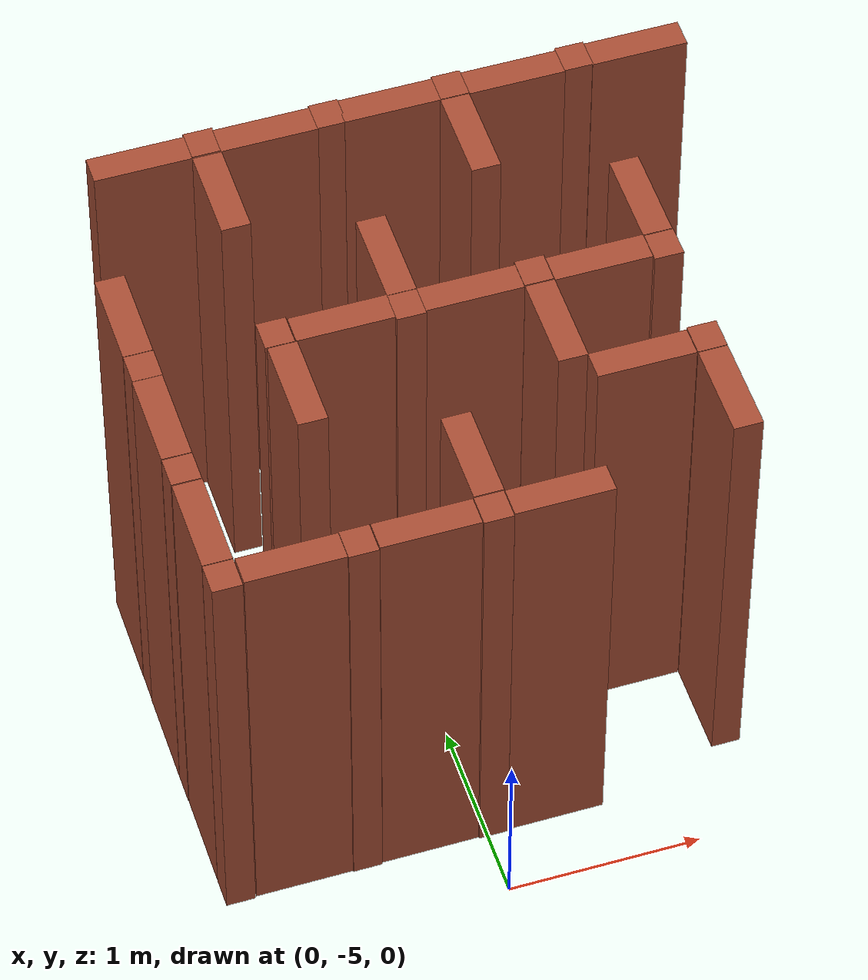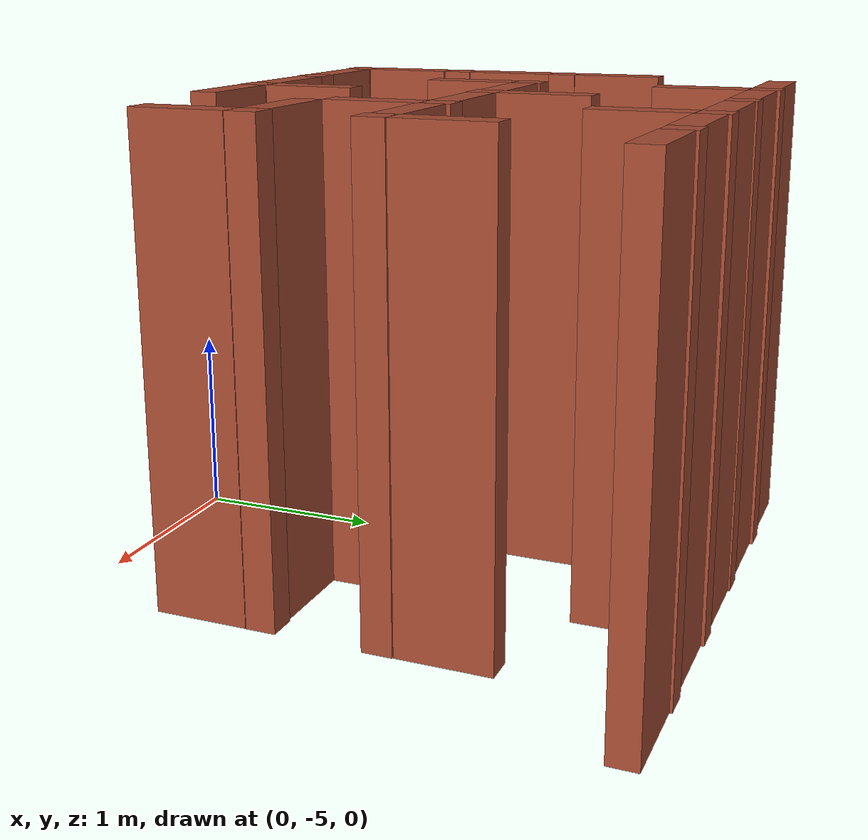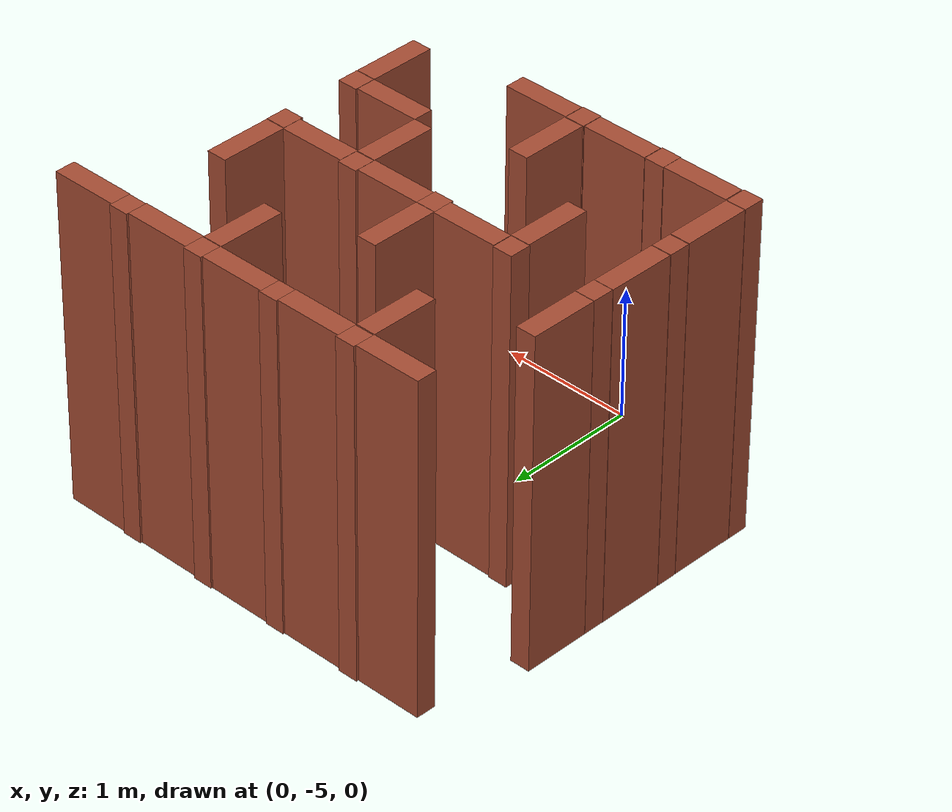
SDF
<?xml version='1.0'?>
<sdf version='1.7'>
  <model name='Maze_01'>
    <pose>0.265067 -2.33264 0 0 -0 0</pose>
    <link name='Wall_10'>
      <collision name='Wall_10_Collision'>
        <geometry>
          <box>
            <size>0.5 0.15 2.5</size>
          </box>
        </geometry>
        <pose>0 0 1.25 0 -0 0</pose>
      </collision>
      <visual name='Wall_10_Visual'>
        <pose>0 0 1.25 0 -0 0</pose>
        <geometry>
          <box>
            <size>0.5 0.15 2.5</size>
          </box>
        </geometry>
        <material>
          <script>
            <uri>file://media/materials/scripts/gazebo.material</uri>
            <name>Gazebo/Bricks</name>
          </script>
          <ambient>1 1 1 1</ambient>
        </material>
        <meta>
          <layer>0</layer>
        </meta>
      </visual>
      <pose>-0.553014 0.372592 0 0 -0 0</pose>
    </link>
    <link name='Wall_100'>
      <collision name='Wall_100_Collision'>
        <geometry>
          <box>
            <size>0.16 0.15 2.5</size>
          </box>
        </geometry>
        <pose>0 0 1.25 0 -0 0</pose>
      </collision>
      <visual name='Wall_100_Visual'>
        <pose>0 0 1.25 0 -0 0</pose>
        <geometry>
          <box>
            <size>0.16 0.15 2.5</size>
          </box>
        </geometry>
        <material>
          <script>
            <uri>file://media/materials/scripts/gazebo.material</uri>
            <name>Gazebo/Bricks</name>
          </script>
          <ambient>1 1 1 1</ambient>
        </material>
        <meta>
          <layer>0</layer>
        </meta>
      </visual>
      <pose>1.06501 -0.940946 0 0 -0 1.5708</pose>
    </link>
    <link name='Wall_102'>
      <collision name='Wall_102_Collision'>
        <geometry>
          <box>
            <size>0.16 0.15 2.5</size>
          </box>
        </geometry>
        <pose>0 0 1.25 0 -0 0</pose>
      </collision>
      <visual name='Wall_102_Visual'>
        <pose>0 0 1.25 0 -0 0</pose>
        <geometry>
          <box>
            <size>0.16 0.15 2.5</size>
          </box>
        </geometry>
        <material>
          <script>
            <uri>file://media/materials/scripts/gazebo.material</uri>
            <name>Gazebo/Bricks</name>
          </script>
          <ambient>1 1 1 1</ambient>
        </material>
        <meta>
          <layer>0</layer>
        </meta>
      </visual>
      <pose>-1.55017 -2.25264 0 0 -0 1.5708</pose>
    </link>
    <link name='Wall_104'>
      <collision name='Wall_104_Collision'>
        <geometry>
          <box>
            <size>0.16 0.15 2.5</size>
          </box>
        </geometry>
        <pose>0 0 1.25 0 -0 0</pose>
      </collision>
      <visual name='Wall_104_Visual'>
        <pose>0 0 1.25 0 -0 0</pose>
        <geometry>
          <box>
            <size>0.16 0.15 2.5</size>
          </box>
        </geometry>
        <material>
          <script>
            <uri>file://media/materials/scripts/gazebo.material</uri>
            <name>Gazebo/Bricks</name>
          </script>
          <ambient>1 1 1 1</ambient>
        </material>
        <meta>
          <layer>0</layer>
        </meta>
      </visual>
      <pose>-0.230921 0.380771 0 0 -0 1.5708</pose>
    </link>
    <link name='Wall_16'>
      <collision name='Wall_16_Collision'>
        <geometry>
          <box>
            <size>0.5 0.15 2.5</size>
          </box>
        </geometry>
        <pose>0 0 1.25 0 -0 0</pose>
      </collision>
      <visual name='Wall_16_Visual'>
        <pose>0 0 1.25 0 -0 0</pose>
        <geometry>
          <box>
            <size>0.5 0.15 2.5</size>
          </box>
        </geometry>
        <material>
          <script>
            <uri>file://media/materials/scripts/gazebo.material</uri>
            <name>Gazebo/Bricks</name>
          </script>
          <ambient>1 1 1 1</ambient>
        </material>
        <meta>
          <layer>0</layer>
        </meta>
      </visual>
      <pose>0.084482 0.375615 0 0 -0 0</pose>
    </link>
    <link name='Wall_18'>
      <collision name='Wall_18_Collision'>
        <geometry>
          <box>
            <size>0.5 0.15 2.5</size>
          </box>
        </geometry>
        <pose>0 0 1.25 0 -0 0</pose>
      </collision>
      <visual name='Wall_18_Visual'>
        <pose>0 0 1.25 0 -0 0</pose>
        <geometry>
          <box>
            <size>0.5 0.15 2.5</size>
          </box>
        </geometry>
        <material>
          <script>
            <uri>file://media/materials/scripts/gazebo.material</uri>
            <name>Gazebo/Bricks</name>
          </script>
          <ambient>1 1 1 1</ambient>
        </material>
        <meta>
          <layer>0</layer>
        </meta>
      </visual>
      <pose>-0.875597 0.045707 0 0 -0 1.5708</pose>
    </link>
    <link name='Wall_20'>
      <collision name='Wall_20_Collision'>
        <geometry>
          <box>
            <size>0.5 0.15 2.5</size>
          </box>
        </geometry>
        <pose>0 0 1.25 0 -0 0</pose>
      </collision>
      <visual name='Wall_20_Visual'>
        <pose>0 0 1.25 0 -0 0</pose>
        <geometry>
          <box>
            <size>0.5 0.15 2.5</size>
          </box>
        </geometry>
        <material>
          <script>
            <uri>file://media/materials/scripts/gazebo.material</uri>
            <name>Gazebo/Bricks</name>
          </script>
          <ambient>1 1 1 1</ambient>
        </material>
        <meta>
          <layer>0</layer>
        </meta>
      </visual>
      <pose>1.37698 0.37283 0 0 -0 0</pose>
    </link>
    <link name='Wall_22'>
      <collision name='Wall_22_Collision'>
        <geometry>
          <box>
            <size>0.5 0.15 2.5</size>
          </box>
        </geometry>
        <pose>0 0 1.25 0 -0 0</pose>
      </collision>
      <visual name='Wall_22_Visual'>
        <pose>0 0 1.25 0 -0 0</pose>
        <geometry>
          <box>
            <size>0.5 0.15 2.5</size>
          </box>
        </geometry>
        <material>
          <script>
            <uri>file://media/materials/scripts/gazebo.material</uri>
            <name>Gazebo/Bricks</name>
          </script>
          <ambient>1 1 1 1</ambient>
        </material>
        <meta>
          <layer>0</layer>
        </meta>
      </visual>
      <pose>0.404778 0.048955 0 0 -0 -1.5708</pose>
    </link>
    <link name='Wall_24'>
      <collision name='Wall_24_Collision'>
        <geometry>
          <box>
            <size>0.5 0.15 2.5</size>
          </box>
        </geometry>
        <pose>0 0 1.25 0 -0 0</pose>
      </collision>
      <visual name='Wall_24_Visual'>
        <pose>0 0 1.25 0 -0 0</pose>
        <geometry>
          <box>
            <size>0.5 0.15 2.5</size>
          </box>
        </geometry>
        <material>
          <script>
            <uri>file://media/materials/scripts/gazebo.material</uri>
            <name>Gazebo/Bricks</name>
          </script>
          <ambient>1 1 1 1</ambient>
        </material>
        <meta>
          <layer>0</layer>
        </meta>
      </visual>
      <pose>-1.55088 -0.586783 0 0 -0 -1.5708</pose>
    </link>
    <link name='Wall_26'>
      <collision name='Wall_26_Collision'>
        <geometry>
          <box>
            <size>0.5 0.15 2.5</size>
          </box>
        </geometry>
        <pose>0 0 1.25 0 -0 0</pose>
      </collision>
      <visual name='Wall_26_Visual'>
        <pose>0 0 1.25 0 -0 0</pose>
        <geometry>
          <box>
            <size>0.5 0.15 2.5</size>
          </box>
        </geometry>
        <material>
          <script>
            <uri>file://media/materials/scripts/gazebo.material</uri>
            <name>Gazebo/Bricks</name>
          </script>
          <ambient>1 1 1 1</ambient>
        </material>
        <meta>
          <layer>0</layer>
        </meta>
      </visual>
      <pose>-1.54996 -1.91949 0 0 -0 -1.5708</pose>
    </link>
    <link name='Wall_28'>
      <collision name='Wall_28_Collision'>
        <geometry>
          <box>
            <size>0.5 0.15 2.5</size>
          </box>
        </geometry>
        <pose>0 0 1.25 0 -0 0</pose>
      </collision>
      <visual name='Wall_28_Visual'>
        <pose>0 0 1.25 0 -0 0</pose>
        <geometry>
          <box>
            <size>0.5 0.15 2.5</size>
          </box>
        </geometry>
        <material>
          <script>
            <uri>file://media/materials/scripts/gazebo.material</uri>
            <name>Gazebo/Bricks</name>
          </script>
          <ambient>1 1 1 1</ambient>
        </material>
        <meta>
          <layer>0</layer>
        </meta>
      </visual>
      <pose>-1.55198 -1.25038 0 0 -0 -1.5708</pose>
    </link>
    <link name='Wall_30'>
      <collision name='Wall_30_Collision'>
        <geometry>
          <box>
            <size>0.5 0.15 2.5</size>
          </box>
        </geometry>
        <pose>0 0 1.25 0 -0 0</pose>
      </collision>
      <visual name='Wall_30_Visual'>
        <pose>0 0 1.25 0 -0 0</pose>
        <geometry>
          <box>
            <size>0.5 0.15 2.5</size>
          </box>
        </geometry>
        <material>
          <script>
            <uri>file://media/materials/scripts/gazebo.material</uri>
            <name>Gazebo/Bricks</name>
          </script>
          <ambient>1 1 1 1</ambient>
        </material>
        <meta>
          <layer>0</layer>
        </meta>
      </visual>
      <pose>0.732216 0.371356 0 0 -0 0</pose>
    </link>
    <link name='Wall_32'>
      <collision name='Wall_32_Collision'>
        <geometry>
          <box>
            <size>0.5 0.15 2.5</size>
          </box>
        </geometry>
        <pose>0 0 1.25 0 -0 0</pose>
      </collision>
      <visual name='Wall_32_Visual'>
        <pose>0 0 1.25 0 -0 0</pose>
        <geometry>
          <box>
            <size>0.5 0.15 2.5</size>
          </box>
        </geometry>
        <material>
          <script>
            <uri>file://media/materials/scripts/gazebo.material</uri>
            <name>Gazebo/Bricks</name>
          </script>
          <ambient>1 1 1 1</ambient>
        </material>
        <meta>
          <layer>0</layer>
        </meta>
      </visual>
      <pose>-1.21826 -2.24786 0 0 -0 0</pose>
    </link>
    <link name='Wall_36'>
      <collision name='Wall_36_Collision'>
        <geometry>
          <box>
            <size>0.5 0.15 2.5</size>
          </box>
        </geometry>
        <pose>0 0 1.25 0 -0 0</pose>
      </collision>
      <visual name='Wall_36_Visual'>
        <pose>0 0 1.25 0 -0 0</pose>
        <geometry>
          <box>
            <size>0.5 0.15 2.5</size>
          </box>
        </geometry>
        <material>
          <script>
            <uri>file://media/materials/scripts/gazebo.material</uri>
            <name>Gazebo/Bricks</name>
          </script>
          <ambient>1 1 1 1</ambient>
        </material>
        <meta>
          <layer>0</layer>
        </meta>
      </visual>
      <pose>-0.562417 -2.24416 0 0 -0 0</pose>
    </link>
    <link name='Wall_45'>
      <collision name='Wall_45_Collision'>
        <geometry>
          <box>
            <size>0.5 0.15 2.5</size>
          </box>
        </geometry>
        <pose>0 0 1.25 0 -0 0</pose>
      </collision>
      <visual name='Wall_45_Visual'>
        <pose>0 0 1.25 0 -0 0</pose>
        <geometry>
          <box>
            <size>0.5 0.15 2.5</size>
          </box>
        </geometry>
        <material>
          <script>
            <uri>file://media/materials/scripts/gazebo.material</uri>
            <name>Gazebo/Bricks</name>
          </script>
          <ambient>1 1 1 1</ambient>
        </material>
        <meta>
          <layer>0</layer>
        </meta>
      </visual>
      <pose>0.094313 -2.2429 0 0 -0 0</pose>
    </link>
    <link name='Wall_47'>
      <collision name='Wall_47_Collision'>
        <geometry>
          <box>
            <size>0.5 0.15 2.5</size>
          </box>
        </geometry>
        <pose>0 0 1.25 0 -0 0</pose>
      </collision>
      <visual name='Wall_47_Visual'>
        <pose>0 0 1.25 0 -0 0</pose>
        <geometry>
          <box>
            <size>0.5 0.15 2.5</size>
          </box>
        </geometry>
        <material>
          <script>
            <uri>file://media/materials/scripts/gazebo.material</uri>
            <name>Gazebo/Bricks</name>
          </script>
          <ambient>1 1 1 1</ambient>
        </material>
        <meta>
          <layer>0</layer>
        </meta>
      </visual>
      <pose>-0.230741 -1.91215 0 0 -0 1.5708</pose>
    </link>
    <link name='Wall_49'>
      <collision name='Wall_49_Collision'>
        <geometry>
          <box>
            <size>0.5 0.15 2.5</size>
          </box>
        </geometry>
        <pose>0 0 1.25 0 -0 0</pose>
      </collision>
      <visual name='Wall_49_Visual'>
        <pose>0 0 1.25 0 -0 0</pose>
        <geometry>
          <box>
            <size>0.5 0.15 2.5</size>
          </box>
        </geometry>
        <material>
          <script>
            <uri>file://media/materials/scripts/gazebo.material</uri>
            <name>Gazebo/Bricks</name>
          </script>
          <ambient>1 1 1 1</ambient>
        </material>
        <meta>
          <layer>0</layer>
        </meta>
      </visual>
      <pose>-0.881737 -1.24431 0 0 -0 1.5708</pose>
    </link>
    <link name='Wall_51'>
      <collision name='Wall_51_Collision'>
        <geometry>
          <box>
            <size>0.5 0.15 2.5</size>
          </box>
        </geometry>
        <pose>0 0 1.25 0 -0 0</pose>
      </collision>
      <visual name='Wall_51_Visual'>
        <pose>0 0 1.25 0 -0 0</pose>
        <geometry>
          <box>
            <size>0.5 0.15 2.5</size>
          </box>
        </geometry>
        <material>
          <script>
            <uri>file://media/materials/scripts/gazebo.material</uri>
            <name>Gazebo/Bricks</name>
          </script>
          <ambient>1 1 1 1</ambient>
        </material>
        <meta>
          <layer>0</layer>
        </meta>
      </visual>
      <pose>-0.56113 -0.917508 0 0 -0 0</pose>
    </link>
    <link name='Wall_53'>
      <collision name='Wall_53_Collision'>
        <geometry>
          <box>
            <size>0.5 0.15 2.5</size>
          </box>
        </geometry>
        <pose>0 0 1.25 0 -0 0</pose>
      </collision>
      <visual name='Wall_53_Visual'>
        <pose>0 0 1.25 0 -0 0</pose>
        <geometry>
          <box>
            <size>0.5 0.15 2.5</size>
          </box>
        </geometry>
        <material>
          <script>
            <uri>file://media/materials/scripts/gazebo.material</uri>
            <name>Gazebo/Bricks</name>
          </script>
          <ambient>1 1 1 1</ambient>
        </material>
        <meta>
          <layer>0</layer>
        </meta>
      </visual>
      <pose>0.085986 -0.923568 0 0 -0 0</pose>
    </link>
    <link name='Wall_59'>
      <collision name='Wall_59_Collision'>
        <geometry>
          <box>
            <size>0.5 0.15 2.5</size>
          </box>
        </geometry>
        <pose>0 0 1.25 0 -0 0</pose>
      </collision>
      <visual name='Wall_59_Visual'>
        <pose>0 0 1.25 0 -0 0</pose>
        <geometry>
          <box>
            <size>0.5 0.15 2.5</size>
          </box>
        </geometry>
        <material>
          <script>
            <uri>file://media/materials/scripts/gazebo.material</uri>
            <name>Gazebo/Bricks</name>
          </script>
          <ambient>1 1 1 1</ambient>
        </material>
        <meta>
          <layer>0</layer>
        </meta>
      </visual>
      <pose>-0.237304 -0.598483 0 0 -0 -1.5708</pose>
    </link>
    <link name='Wall_61'>
      <collision name='Wall_61_Collision'>
        <geometry>
          <box>
            <size>0.5 0.15 2.5</size>
          </box>
        </geometry>
        <pose>0 0 1.25 0 -0 0</pose>
      </collision>
      <visual name='Wall_61_Visual'>
        <pose>0 0 1.25 0 -0 0</pose>
        <geometry>
          <box>
            <size>0.5 0.15 2.5</size>
          </box>
        </geometry>
        <material>
          <script>
            <uri>file://media/materials/scripts/gazebo.material</uri>
            <name>Gazebo/Bricks</name>
          </script>
          <ambient>1 1 1 1</ambient>
        </material>
        <meta>
          <layer>0</layer>
        </meta>
      </visual>
      <pose>0.738624 -0.926371 0 0 -0 0</pose>
    </link>
    <link name='Wall_63'>
      <collision name='Wall_63_Collision'>
        <geometry>
          <box>
            <size>0.16 0.15 2.5</size>
          </box>
        </geometry>
        <pose>0 0 1.25 0 -0 0</pose>
      </collision>
      <visual name='Wall_63_Visual'>
        <pose>0 0 1.25 0 -0 0</pose>
        <geometry>
          <box>
            <size>0.16 0.15 2.5</size>
          </box>
        </geometry>
        <material>
          <script>
            <uri>file://media/materials/scripts/gazebo.material</uri>
            <name>Gazebo/Bricks</name>
          </script>
          <ambient>1 1 1 1</ambient>
        </material>
        <meta>
          <layer>0</layer>
        </meta>
      </visual>
      <pose>1.06277 -1.56144 0 0 -0 1.5708</pose>
    </link>
    <link name='Wall_65'>
      <collision name='Wall_65_Collision'>
        <geometry>
          <box>
            <size>0.5 0.15 2.5</size>
          </box>
        </geometry>
        <pose>0 0 1.25 0 -0 0</pose>
      </collision>
      <visual name='Wall_65_Visual'>
        <pose>0 0 1.25 0 -0 0</pose>
        <geometry>
          <box>
            <size>0.5 0.15 2.5</size>
          </box>
        </geometry>
        <material>
          <script>
            <uri>file://media/materials/scripts/gazebo.material</uri>
            <name>Gazebo/Bricks</name>
          </script>
          <ambient>1 1 1 1</ambient>
        </material>
        <meta>
          <layer>0</layer>
        </meta>
      </visual>
      <pose>0.73464 -1.56814 0 0 -0 0</pose>
    </link>
    <link name='Wall_71'>
      <collision name='Wall_71_Collision'>
        <geometry>
          <box>
            <size>0.5 0.15 2.5</size>
          </box>
        </geometry>
        <pose>0 0 1.25 0 -0 0</pose>
      </collision>
      <visual name='Wall_71_Visual'>
        <pose>0 0 1.25 0 -0 0</pose>
        <geometry>
          <box>
            <size>0.5 0.15 2.5</size>
          </box>
        </geometry>
        <material>
          <script>
            <uri>file://media/materials/scripts/gazebo.material</uri>
            <name>Gazebo/Bricks</name>
          </script>
          <ambient>1 1 1 1</ambient>
        </material>
        <meta>
          <layer>0</layer>
        </meta>
      </visual>
      <pose>1.06189 -0.606856 0 0 -0 -1.5708</pose>
    </link>
    <link name='Wall_73'>
      <collision name='Wall_73_Collision'>
        <geometry>
          <box>
            <size>0.5 0.15 2.5</size>
          </box>
        </geometry>
        <pose>0 0 1.25 0 -0 0</pose>
      </collision>
      <visual name='Wall_73_Visual'>
        <pose>0 0 1.25 0 -0 0</pose>
        <geometry>
          <box>
            <size>0.5 0.15 2.5</size>
          </box>
        </geometry>
        <material>
          <script>
            <uri>file://media/materials/scripts/gazebo.material</uri>
            <name>Gazebo/Bricks</name>
          </script>
          <ambient>1 1 1 1</ambient>
        </material>
        <meta>
          <layer>0</layer>
        </meta>
      </visual>
      <pose>0.412384 -1.24564 0 0 -0 -1.5708</pose>
    </link>
    <link name='Wall_75'>
      <collision name='Wall_75_Collision'>
        <geometry>
          <box>
            <size>0.5 0.15 2.5</size>
          </box>
        </geometry>
        <pose>0 0 1.25 0 -0 0</pose>
      </collision>
      <visual name='Wall_75_Visual'>
        <pose>0 0 1.25 0 -0 0</pose>
        <geometry>
          <box>
            <size>0.5 0.15 2.5</size>
          </box>
        </geometry>
        <material>
          <script>
            <uri>file://media/materials/scripts/gazebo.material</uri>
            <name>Gazebo/Bricks</name>
          </script>
          <ambient>1 1 1 1</ambient>
        </material>
        <meta>
          <layer>0</layer>
        </meta>
      </visual>
      <pose>1.06189 -1.89514 0 0 -0 -1.5708</pose>
    </link>
    <link name='Wall_77'>
      <collision name='Wall_77_Collision'>
        <geometry>
          <box>
            <size>0.16 0.15 2.5</size>
          </box>
        </geometry>
        <pose>0 0 1.25 0 -0 0</pose>
      </collision>
      <visual name='Wall_77_Visual'>
        <pose>0 0 1.25 0 -0 0</pose>
        <geometry>
          <box>
            <size>0.16 0.15 2.5</size>
          </box>
        </geometry>
        <material>
          <script>
            <uri>file://media/materials/scripts/gazebo.material</uri>
            <name>Gazebo/Bricks</name>
          </script>
          <ambient>1 1 1 1</ambient>
        </material>
        <meta>
          <layer>0</layer>
        </meta>
      </visual>
      <pose>-1.5517 -1.58429 0 0 -0 1.5708</pose>
    </link>
    <link name='Wall_8'>
      <collision name='Wall_8_Collision'>
        <geometry>
          <box>
            <size>0.5 0.15 2.5</size>
          </box>
        </geometry>
        <pose>0 0 1.25 0 -0 0</pose>
      </collision>
      <visual name='Wall_8_Visual'>
        <pose>0 0 1.25 0 -0 0</pose>
        <geometry>
          <box>
            <size>0.5 0.15 2.5</size>
          </box>
        </geometry>
        <material>
          <script>
            <uri>file://media/materials/scripts/gazebo.material</uri>
            <name>Gazebo/Bricks</name>
          </script>
          <ambient>1 1 1 1</ambient>
        </material>
        <meta>
          <layer>0</layer>
        </meta>
      </visual>
      <pose>-1.20007 0.372643 0 0 -0 0</pose>
    </link>
    <link name='Wall_80'>
      <collision name='Wall_80_Collision'>
        <geometry>
          <box>
            <size>0.16 0.15 2.5</size>
          </box>
        </geometry>
        <pose>0 0 1.25 0 -0 0</pose>
      </collision>
      <visual name='Wall_80_Visual'>
        <pose>0 0 1.25 0 -0 0</pose>
        <geometry>
          <box>
            <size>0.16 0.15 2.5</size>
          </box>
        </geometry>
        <material>
          <script>
            <uri>file://media/materials/scripts/gazebo.material</uri>
            <name>Gazebo/Bricks</name>
          </script>
          <ambient>1 1 1 1</ambient>
        </material>
        <meta>
          <layer>0</layer>
        </meta>
      </visual>
      <pose>-0.238687 -0.930446 0 0 -0 1.5708</pose>
    </link>
    <link name='Wall_82'>
      <collision name='Wall_82_Collision'>
        <geometry>
          <box>
            <size>0.16 0.15 2.5</size>
          </box>
        </geometry>
        <pose>0 0 1.25 0 -0 0</pose>
      </collision>
      <visual name='Wall_82_Visual'>
        <pose>0 0 1.25 0 -0 0</pose>
        <geometry>
          <box>
            <size>0.16 0.15 2.5</size>
          </box>
        </geometry>
        <material>
          <script>
            <uri>file://media/materials/scripts/gazebo.material</uri>
            <name>Gazebo/Bricks</name>
          </script>
          <ambient>1 1 1 1</ambient>
        </material>
        <meta>
          <layer>0</layer>
        </meta>
      </visual>
      <pose>0.411726 -0.910286 0 0 -0 1.5708</pose>
    </link>
    <link name='Wall_84'>
      <collision name='Wall_84_Collision'>
        <geometry>
          <box>
            <size>0.16 0.15 2.5</size>
          </box>
        </geometry>
        <pose>0 0 1.25 0 -0 0</pose>
      </collision>
      <visual name='Wall_84_Visual'>
        <pose>0 0 1.25 0 -0 0</pose>
        <geometry>
          <box>
            <size>0.16 0.15 2.5</size>
          </box>
        </geometry>
        <material>
          <script>
            <uri>file://media/materials/scripts/gazebo.material</uri>
            <name>Gazebo/Bricks</name>
          </script>
          <ambient>1 1 1 1</ambient>
        </material>
        <meta>
          <layer>0</layer>
        </meta>
      </visual>
      <pose>-0.891679 -2.24863 0 0 -0 1.5708</pose>
    </link>
    <link name='Wall_86'>
      <collision name='Wall_86_Collision'>
        <geometry>
          <box>
            <size>0.16 0.15 2.5</size>
          </box>
        </geometry>
        <pose>0 0 1.25 0 -0 0</pose>
      </collision>
      <visual name='Wall_86_Visual'>
        <pose>0 0 1.25 0 -0 0</pose>
        <geometry>
          <box>
            <size>0.16 0.15 2.5</size>
          </box>
        </geometry>
        <material>
          <script>
            <uri>file://media/materials/scripts/gazebo.material</uri>
            <name>Gazebo/Bricks</name>
          </script>
          <ambient>1 1 1 1</ambient>
        </material>
        <meta>
          <layer>0</layer>
        </meta>
      </visual>
      <pose>-0.234064 -2.24707 0 0 -0 1.5708</pose>
    </link>
    <link name='Wall_90'>
      <collision name='Wall_90_Collision'>
        <geometry>
          <box>
            <size>0.16 0.15 2.5</size>
          </box>
        </geometry>
        <pose>0 0 1.25 0 -0 0</pose>
      </collision>
      <visual name='Wall_90_Visual'>
        <pose>0 0 1.25 0 -0 0</pose>
        <geometry>
          <box>
            <size>0.16 0.15 2.5</size>
          </box>
        </geometry>
        <material>
          <script>
            <uri>file://media/materials/scripts/gazebo.material</uri>
            <name>Gazebo/Bricks</name>
          </script>
          <ambient>1 1 1 1</ambient>
        </material>
        <meta>
          <layer>0</layer>
        </meta>
      </visual>
      <pose>-0.891015 -0.911008 0 0 -0 1.5708</pose>
    </link>
    <link name='Wall_92'>
      <collision name='Wall_92_Collision'>
        <geometry>
          <box>
            <size>0.16 0.15 2.5</size>
          </box>
        </geometry>
        <pose>0 0 1.25 0 -0 0</pose>
      </collision>
      <visual name='Wall_92_Visual'>
        <pose>0 0 1.25 0 -0 0</pose>
        <geometry>
          <box>
            <size>0.16 0.15 2.5</size>
          </box>
        </geometry>
        <material>
          <script>
            <uri>file://media/materials/scripts/gazebo.material</uri>
            <name>Gazebo/Bricks</name>
          </script>
          <ambient>1 1 1 1</ambient>
        </material>
        <meta>
          <layer>0</layer>
        </meta>
      </visual>
      <pose>-1.54992 -0.919166 0 0 -0 1.5708</pose>
    </link>
    <link name='Wall_94'>
      <collision name='Wall_94_Collision'>
        <geometry>
          <box>
            <size>0.16 0.15 2.5</size>
          </box>
        </geometry>
        <pose>0 0 1.25 0 -0 0</pose>
      </collision>
      <visual name='Wall_94_Visual'>
        <pose>0 0 1.25 0 -0 0</pose>
        <geometry>
          <box>
            <size>0.16 0.15 2.5</size>
          </box>
        </geometry>
        <material>
          <script>
            <uri>file://media/materials/scripts/gazebo.material</uri>
            <name>Gazebo/Bricks</name>
          </script>
          <ambient>1 1 1 1</ambient>
        </material>
        <meta>
          <layer>0</layer>
        </meta>
      </visual>
      <pose>1.05582 0.38193 0 0 -0 1.5708</pose>
    </link>
    <link name='Wall_96'>
      <collision name='Wall_96_Collision'>
        <geometry>
          <box>
            <size>0.16 0.15 2.5</size>
          </box>
        </geometry>
        <pose>0 0 1.25 0 -0 0</pose>
      </collision>
      <visual name='Wall_96_Visual'>
        <pose>0 0 1.25 0 -0 0</pose>
        <geometry>
          <box>
            <size>0.16 0.15 2.5</size>
          </box>
        </geometry>
        <material>
          <script>
            <uri>file://media/materials/scripts/gazebo.material</uri>
            <name>Gazebo/Bricks</name>
          </script>
          <ambient>1 1 1 1</ambient>
        </material>
        <meta>
          <layer>0</layer>
        </meta>
      </visual>
      <pose>0.407881 0.383469 0 0 -0 1.5708</pose>
    </link>
    <link name='Wall_98'>
      <collision name='Wall_98_Collision'>
        <geometry>
          <box>
            <size>0.16 0.15 2.5</size>
          </box>
        </geometry>
        <pose>0 0 1.25 0 -0 0</pose>
      </collision>
      <visual name='Wall_98_Visual'>
        <pose>0 0 1.25 0 -0 0</pose>
        <geometry>
          <box>
            <size>0.16 0.15 2.5</size>
          </box>
        </geometry>
        <material>
          <script>
            <uri>file://media/materials/scripts/gazebo.material</uri>
            <name>Gazebo/Bricks</name>
          </script>
          <ambient>1 1 1 1</ambient>
        </material>
        <meta>
          <layer>0</layer>
        </meta>
      </visual>
      <pose>-0.875006 0.385034 0 0 -0 1.5708</pose>
    </link>
    <static>1</static>
  </model>
</sdf>
